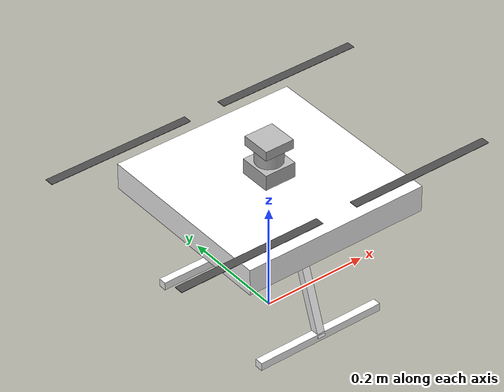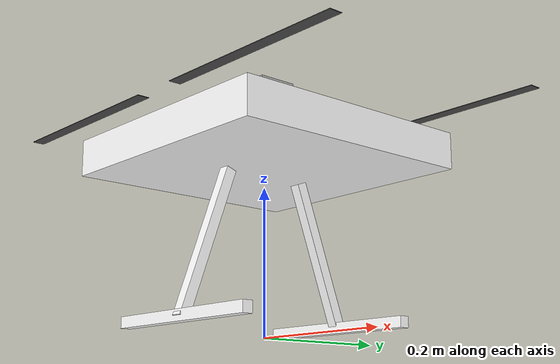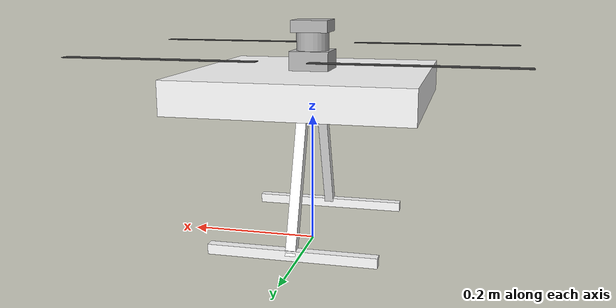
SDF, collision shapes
<?xml version="1.0" encoding="UTF-8"?>
<sdf version='1.9'>
  <model name='x500_lidar_3d'>

    <plugin
      filename="gz-sim-odometry-publisher-system"
      name="gz::sim::systems::OdometryPublisher">
      <dimensions>3</dimensions>
      <odom_covariance_topic>/mavros/local_position/odom</odom_covariance_topic>
      <gaussian_noise>0.01</gaussian_noise>
    </plugin>

    <plugin
      filename="gz-sim-forcetorque-system"
      name="gz::sim::systems::ForceTorque">
    </plugin>

    <include merge='true'>
      <uri>x500</uri>
    </include>
    <include merge='true'>
      <uri>model://lidar_3d</uri>
      <pose>0 0 0.26 0 0 0</pose>
    </include>
    <joint name="LidarJoint" type="fixed">
      <parent>base_link</parent>
      <child>link</child>
      <pose relative_to="base_link">-0 0 0.26 0 0 0</pose>
    </joint>
  </model>
</sdf>

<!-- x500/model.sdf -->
<sdf version='1.9'>
  <model name='x500'>
    <include merge='true'>
      <uri>model://x500_base</uri>
    </include>
    <plugin filename="gz-sim-multicopter-motor-model-system" name="gz::sim::systems::MulticopterMotorModel">
      <jointName>rotor_0_joint</jointName>
      <linkName>rotor_0</linkName>
      <turningDirection>ccw</turningDirection>
      <timeConstantUp>0.0125</timeConstantUp>
      <timeConstantDown>0.025</timeConstantDown>
      <maxRotVelocity>1000.0</maxRotVelocity>
      <motorConstant>8.54858e-06</motorConstant>
      <momentConstant>0.016</momentConstant>
      <commandSubTopic>command/motor_speed</commandSubTopic>
      <motorNumber>0</motorNumber>
      <rotorDragCoefficient>8.06428e-05</rotorDragCoefficient>
      <rollingMomentCoefficient>1e-06</rollingMomentCoefficient>
      <rotorVelocitySlowdownSim>10</rotorVelocitySlowdownSim>
      <motorType>velocity</motorType>
      <motorSpeedPubTopic>out/motor_speed/0</motorSpeedPubTopic>
    </plugin>
    <plugin filename="gz-sim-multicopter-motor-model-system" name="gz::sim::systems::MulticopterMotorModel">
      <jointName>rotor_1_joint</jointName>
      <linkName>rotor_1</linkName>
      <turningDirection>ccw</turningDirection>
      <timeConstantUp>0.0125</timeConstantUp>
      <timeConstantDown>0.025</timeConstantDown>
      <maxRotVelocity>1000.0</maxRotVelocity>
      <motorConstant>8.54858e-06</motorConstant>
      <momentConstant>0.016</momentConstant>
      <commandSubTopic>command/motor_speed</commandSubTopic>
      <motorNumber>1</motorNumber>
      <rotorDragCoefficient>8.06428e-05</rotorDragCoefficient>
      <rollingMomentCoefficient>1e-06</rollingMomentCoefficient>
      <rotorVelocitySlowdownSim>10</rotorVelocitySlowdownSim>
      <motorType>velocity</motorType>
      <motorSpeedPubTopic>out/motor_speed/1</motorSpeedPubTopic>
    </plugin>
    <plugin filename="gz-sim-multicopter-motor-model-system" name="gz::sim::systems::MulticopterMotorModel">
      <jointName>rotor_2_joint</jointName>
      <linkName>rotor_2</linkName>
      <turningDirection>cw</turningDirection>
      <timeConstantUp>0.0125</timeConstantUp>
      <timeConstantDown>0.025</timeConstantDown>
      <maxRotVelocity>1000.0</maxRotVelocity>
      <motorConstant>8.54858e-06</motorConstant>
      <momentConstant>0.016</momentConstant>
      <commandSubTopic>command/motor_speed</commandSubTopic>
      <motorNumber>2</motorNumber>
      <rotorDragCoefficient>8.06428e-05</rotorDragCoefficient>
      <rollingMomentCoefficient>1e-06</rollingMomentCoefficient>
      <rotorVelocitySlowdownSim>10</rotorVelocitySlowdownSim>
      <motorType>velocity</motorType>
      <motorSpeedPubTopic>out/motor_speed/2</motorSpeedPubTopic>
    </plugin>
    <plugin filename="gz-sim-multicopter-motor-model-system" name="gz::sim::systems::MulticopterMotorModel">
      <jointName>rotor_3_joint</jointName>
      <linkName>rotor_3</linkName>
      <turningDirection>cw</turningDirection>
      <timeConstantUp>0.0125</timeConstantUp>
      <timeConstantDown>0.025</timeConstantDown>
      <maxRotVelocity>1000.0</maxRotVelocity>
      <motorConstant>8.54858e-06</motorConstant>
      <momentConstant>0.016</momentConstant>
      <commandSubTopic>command/motor_speed</commandSubTopic>
      <motorNumber>3</motorNumber>
      <rotorDragCoefficient>8.06428e-05</rotorDragCoefficient>
      <rollingMomentCoefficient>1e-06</rollingMomentCoefficient>
      <rotorVelocitySlowdownSim>10</rotorVelocitySlowdownSim>
      <motorType>velocity</motorType>
      <motorSpeedPubTopic>out/motor_speed/3</motorSpeedPubTopic>
    </plugin>
  </model>
</sdf>

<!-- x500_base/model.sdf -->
<sdf version='1.9'>
  <model name='x500_base'>
    <pose>0 0 .24 0 0 0</pose>
    <self_collide>false</self_collide>
    <static>false</static>
    <link name="base_link">
      <inertial>
        <mass>2.0</mass>
        <inertia>
          <ixx>0.02166666666666667</ixx>
          <ixy>0</ixy>
          <ixz>0</ixz>
          <iyy>0.02166666666666667</iyy>
          <iyz>0</iyz>
          <izz>0.04000000000000001</izz>
        </inertia>
      </inertial>
      <gravity>true</gravity>
      <velocity_decay/>
      <visual name="base_link_visual">
        <pose>0 0 .025 0 0 3.141592654</pose>
        <geometry>
          <mesh>
            <scale>1 1 1</scale>
            <uri>model://x500_base/meshes/NXP-HGD-CF.dae</uri>
          </mesh>
        </geometry>
      </visual>
      <visual name="5010_motor_base_0">
        <pose>0.174 0.174 .032 0 0 -.45</pose>
        <geometry>
          <mesh>
            <scale>1 1 1</scale>
            <uri>model://x500_base/meshes/5010Base.dae</uri>
          </mesh>
        </geometry>
      </visual>
      <visual name="5010_motor_base_1">
        <pose>-0.174 0.174 .032 0 0 -.45</pose>
        <geometry>
          <mesh>
            <scale>1 1 1</scale>
            <uri>model://x500_base/meshes/5010Base.dae</uri>
          </mesh>
        </geometry>
      </visual>
      <visual name="5010_motor_base_2">
        <pose>0.174 -0.174 .032 0 0 -.45</pose>
        <geometry>
          <mesh>
            <scale>1 1 1</scale>
            <uri>model://x500_base/meshes/5010Base.dae</uri>
          </mesh>
        </geometry>
      </visual>
      <visual name="5010_motor_base_3">
        <pose>-0.174 -0.174 .032 0 0 -.45</pose>
        <geometry>
          <mesh>
            <scale>1 1 1</scale>
            <uri>model://x500_base/meshes/5010Base.dae</uri>
          </mesh>
        </geometry>
      </visual>
      <visual name="NXP_FMUK66_FRONT">
        <pose>0.047 .001 .043 1 0 1.57</pose>
        <cast_shadows>false</cast_shadows>
        <geometry>
          <plane>
            <normal>0 0 1</normal>
            <size>.013 .007</size>
          </plane>
        </geometry>
        <material>
          <diffuse>1.0 1.0 1.0</diffuse>
          <specular>1.0 1.0 1.0</specular>
          <pbr>
            <metal>
              <albedo_map>model://x500_base/materials/textures/nxp.png</albedo_map>
            </metal>
          </pbr>
        </material>
      </visual>
      <visual name="NXP_FMUK66_TOP">
        <pose>-0.023 0 .0515 0 0 -1.57</pose>
        <cast_shadows>false</cast_shadows>
        <geometry>
          <plane>
            <normal>0 0 1</normal>
            <size>.013 .007</size>
          </plane>
        </geometry>
        <material>
          <diffuse>1.0 1.0 1.0</diffuse>
          <specular>1.0 1.0 1.0</specular>
          <pbr>
            <metal>
              <albedo_map>model://x500_base/materials/textures/nxp.png</albedo_map>
            </metal>
          </pbr>
        </material>
      </visual>
      <visual name="RDDRONE_FMUK66_TOP">
        <pose>-.03 0 .0515 0 0 -1.57</pose>
        <cast_shadows>false</cast_shadows>
        <geometry>
          <plane>
            <normal>0 0 1</normal>
            <size>.032 .0034</size>
          </plane>
        </geometry>
        <material>
          <diffuse>1.0 1.0 1.0</diffuse>
          <specular>1.0 1.0 1.0</specular>
          <pbr>
            <metal>
              <albedo_map>model://x500_base/materials/textures/rd.png</albedo_map>
            </metal>
          </pbr>
        </material>
      </visual>
      <collision name="base_link_collision_0">
        <pose>0 0 .007 0 0 0</pose>
        <geometry>
          <box>
            <size>0.35355339059327373 0.35355339059327373 0.05</size>
          </box>
        </geometry>
        <surface>
          <contact>
            <ode>
              <min_depth>0.001</min_depth>
              <max_vel>0</max_vel>
            </ode>
          </contact>
          <friction>
            <ode/>
          </friction>
        </surface>
      </collision>
      <collision name="base_link_collision_1">
        <pose>0 -0.098 -.123 -0.35 0 0</pose>
        <geometry>
          <box>
            <size>0.015 0.015 0.21</size>
          </box>
        </geometry>
        <surface>
          <contact>
            <ode>
              <min_depth>0.001</min_depth>
              <max_vel>0</max_vel>
            </ode>
          </contact>
          <friction>
            <ode/>
          </friction>
        </surface>
      </collision>
      <collision name="base_link_collision_2">
        <pose>0 0.098 -.123 0.35 0 0</pose>
        <geometry>
          <box>
            <size>0.015 0.015 0.21</size>
          </box>
        </geometry>
        <surface>
          <contact>
            <ode>
              <min_depth>0.001</min_depth>
              <max_vel>0</max_vel>
            </ode>
          </contact>
          <friction>
            <ode/>
          </friction>
        </surface>
      </collision>
      <collision name="base_link_collision_3">
        <pose>0 -0.132 -.2195 0 0 0</pose>
        <geometry>
          <box>
            <size>0.25 0.015 0.015</size>
          </box>
        </geometry>
        <surface>
          <contact>
            <ode>
              <min_depth>0.001</min_depth>
              <max_vel>0</max_vel>
            </ode>
          </contact>
          <friction>
            <ode/>
          </friction>
        </surface>
      </collision>
      <collision name="base_link_collision_4">
        <pose>0 0.132 -.2195 0 0 0</pose>
        <geometry>
          <box>
            <size>0.25 0.015 0.015</size>
          </box>
        </geometry>
        <surface>
          <contact>
            <ode>
              <min_depth>0.001</min_depth>
              <max_vel>0</max_vel>
            </ode>
          </contact>
          <friction>
            <ode/>
          </friction>
        </surface>
      </collision>
      <sensor name="air_pressure_sensor" type="air_pressure">
        <always_on>1</always_on>
        <update_rate>50</update_rate>
        <air_pressure>
          <!-- Noise modeled after BMP390 -->
          <pressure>
            <noise type="gaussian">
              <mean>0</mean>
              <stddev>3</stddev>
            </noise>
          </pressure>
        </air_pressure>
      </sensor>
      <sensor name="magnetometer_sensor" type="magnetometer">
        <always_on>1</always_on>
        <update_rate>100</update_rate>
        <magnetometer>
          <!-- TODO: update to fix units and coordinate system when we move past Harmonic -->
          <!-- See https://github.com/gazebosim/gz-sim/pull/2460 -->
          <!-- 3mgauss RMS: NOTE: noise is in tesla but sensor reports data in gauss -->
          <!-- Noise modeled after IIS2MDC -->
          <x>
            <noise type="gaussian">
              <stddev>0.00001</stddev>
            </noise>
          </x>
          <y>
            <noise type="gaussian">
              <stddev>0.00001</stddev>
            </noise>
          </y>
          <z>
            <noise type="gaussian">
              <stddev>0.00001</stddev>
            </noise>
          </z>
        </magnetometer>
      </sensor>
      <sensor name="imu_sensor" type="imu">
        <always_on>1</always_on>
        <update_rate>250</update_rate>
        <imu>
          <angular_velocity>
            <!-- Noise modeled after IIM42653 -->
            <!-- 0.05 deg/s converted to rad/s -->
            <x>
              <noise type="gaussian">
                <mean>0.0</mean>
                <stddev>0.0002</stddev>
              </noise>
            </x>
            <y>
              <noise type="gaussian">
                <mean>0.0</mean>
                <stddev>0.0002</stddev>
              </noise>
            </y>
            <z>
              <noise type="gaussian">
                <mean>0.0</mean>
                <stddev>0.0002</stddev>
              </noise>
            </z>
          </angular_velocity>
          <linear_acceleration>
            <!-- Noise modeled after IIM42653 -->
            <!-- X & Y axis: 0.65 mg-rms converted to m/ss -->
            <x>
              <noise type="gaussian">
                <mean>0.0</mean>
                <stddev>0.002</stddev>
              </noise>
            </x>
            <y>
              <noise type="gaussian">
                <mean>0.0</mean>
                <stddev>0.002</stddev>
              </noise>
            </y>
            <!-- Z axis: 0.70 mg-rms converted to m/ss-->
            <z>
              <noise type="gaussian">
                <mean>0.0</mean>
                <stddev>0.0025</stddev>
              </noise>
            </z>
          </linear_acceleration>
        </imu>
      </sensor>
      <sensor name="navsat_sensor" type="navsat">
  <always_on>true</always_on>
  <update_rate>10</update_rate>

</sensor>
    </link>
    <link name="rotor_0">
      <gravity>true</gravity>
      <self_collide>false</self_collide>
      <velocity_decay/>
      <pose>0.174 -0.174 0.06 0 0 0</pose>
      <inertial>
          <mass>0.016076923076923075</mass>
          <inertia>
            <ixx>3.8464910483993325e-07</ixx>
            <iyy>2.6115851691700804e-05</iyy>
            <izz>2.649858234714004e-05</izz>
          </inertia>
        </inertial>
      <visual name="rotor_0_visual">
        <pose>-0.022 -0.14638461538461536 -0.016 0 0 0</pose>
        <geometry>
          <mesh>
            <scale>0.8461538461538461 0.8461538461538461 0.8461538461538461</scale>
            <uri>model://x500_base/meshes/1345_prop_ccw.stl</uri>
          </mesh>
        </geometry>
        <material>
          <script>
            <name>Gazebo/DarkGrey</name>
            <uri>file://media/materials/scripts/gazebo.material</uri>
          </script>
        </material>
      </visual>
      <visual name="rotor_0_visual_motor_bell">
        <pose>0 0 -.032 0 0 0</pose>
        <geometry>
          <mesh>
            <scale>1 1 1</scale>
            <uri>model://x500_base/meshes/5010Bell.dae</uri>
          </mesh>
        </geometry>
      </visual>
      <collision name="rotor_0_collision">
        <pose>0 0 0 0 0 0 </pose>
        <geometry>
          <box>
            <size>0.2792307692307692 0.016923076923076923 0.0008461538461538462</size>
          </box>
        </geometry>
        <surface>
          <contact>
            <ode>
              <min_depth>0.001</min_depth>
              <max_vel>0</max_vel>
            </ode>
          </contact>
          <friction>
            <ode/>
          </friction>
        </surface>
      </collision>
    </link>
    <joint name="rotor_0_joint" type="revolute">
      <parent>base_link</parent>
      <child>rotor_0</child>
      <axis>
        <xyz>0 0 1</xyz>
        <limit>
          <lower>-1e+16</lower>
          <upper>1e+16</upper>
        </limit>
        <dynamics>
          <spring_reference>0</spring_reference>
          <spring_stiffness>0</spring_stiffness>
        </dynamics>
      </axis>
      <sensor name="force_torque" type="force_torque">
          <update_rate>400</update_rate>
          <force>
            <x><noise type="gaussian"><mean>0.00</mean><stddev>0.00</stddev></noise></x>
            <y><noise type="gaussian"><mean>0.00</mean><stddev>0.00</stddev></noise></y>
            <z><noise type="gaussian"><mean>0.00</mean><stddev>0.00</stddev></noise></z>
          </force>
          <torque>
            <x><noise type="gaussian"><mean>0.00</mean><stddev>0.00</stddev></noise></x>
            <y><noise type="gaussian"><mean>0.00</mean><stddev>0.00</stddev></noise></y>
            <z><noise type="gaussian"><mean>0.00</mean><stddev>0.00</stddev></noise></z>
          </torque>
      </sensor>
    </joint>
    <link name="rotor_1">
      <gravity>true</gravity>
      <self_collide>false</self_collide>
      <velocity_decay/>
      <pose>-0.174 0.174 0.06 0 0 0</pose>
      <inertial>
          <mass>0.016076923076923075</mass>
          <inertia>
            <ixx>3.8464910483993325e-07</ixx>
            <iyy>2.6115851691700804e-05</iyy>
            <izz>2.649858234714004e-05</izz>
          </inertia>
        </inertial>
      <visual name="rotor_1_visual">
        <pose>-0.022 -0.14638461538461536 -0.016 0 0 0</pose>
        <geometry>
          <mesh>
            <scale>0.8461538461538461 0.8461538461538461 0.8461538461538461</scale>
            <uri>model://x500_base/meshes/1345_prop_ccw.stl</uri>
          </mesh>
        </geometry>
        <material>
          <script>
            <name>Gazebo/DarkGrey</name>
            <uri>file://media/materials/scripts/gazebo.material</uri>
          </script>
        </material>
      </visual>
      <visual name="rotor_1_visual_motor_top">
        <pose>0 0 -.032 0 0 0</pose>
        <geometry>
          <mesh>
            <scale>1 1 1</scale>
            <uri>model://x500_base/meshes/5010Bell.dae</uri>
          </mesh>
        </geometry>
      </visual>
      <collision name="rotor_1_collision">
        <pose>0 0 0 0 0 0 </pose>
        <geometry>
          <box>
            <size>0.2792307692307692 0.016923076923076923 0.0008461538461538462</size>
          </box>
        </geometry>
        <surface>
          <contact>
            <ode>
              <min_depth>0.001</min_depth>
              <max_vel>0</max_vel>
            </ode>
          </contact>
          <friction>
            <ode/>
          </friction>
        </surface>
      </collision>
    </link>
    <joint name="rotor_1_joint" type="revolute">
      <parent>base_link</parent>
      <child>rotor_1</child>
      <axis>
        <xyz>0 0 1</xyz>
        <limit>
          <lower>-1e+16</lower>
          <upper>1e+16</upper>
        </limit>
        <dynamics>
          <spring_reference>0</spring_reference>
          <spring_stiffness>0</spring_stiffness>
        </dynamics>
      </axis>
      <sensor name="force_torque" type="force_torque">
          <update_rate>400</update_rate>
          <force>
            <x><noise type="gaussian"><mean>0.00</mean><stddev>0.00</stddev></noise></x>
            <y><noise type="gaussian"><mean>0.00</mean><stddev>0.00</stddev></noise></y>
            <z><noise type="gaussian"><mean>0.00</mean><stddev>0.00</stddev></noise></z>
          </force>
          <torque>
            <x><noise type="gaussian"><mean>0.00</mean><stddev>0.00</stddev></noise></x>
            <y><noise type="gaussian"><mean>0.00</mean><stddev>0.00</stddev></noise></y>
            <z><noise type="gaussian"><mean>0.00</mean><stddev>0.00</stddev></noise></z>
          </torque>
      </sensor>
    </joint>
    <link name="rotor_2">
      <gravity>true</gravity>
      <self_collide>false</self_collide>
      <velocity_decay/>
      <pose>0.174 0.174 0.06 0 0 0</pose>
      <inertial>
          <mass>0.016076923076923075</mass>
          <inertia>
            <ixx>3.8464910483993325e-07</ixx>
            <iyy>2.6115851691700804e-05</iyy>
            <izz>2.649858234714004e-05</izz>
          </inertia>
        </inertial>
      <visual name="rotor_2_visual">
        <pose>-0.022 -0.14638461538461536 -0.016 0 0 0</pose>
        <geometry>
          <mesh>
            <scale>0.8461538461538461 0.8461538461538461 0.8461538461538461</scale>
            <uri>model://x500_base/meshes/1345_prop_cw.stl</uri>
          </mesh>
        </geometry>
        <material>
          <script>
            <name>Gazebo/DarkGrey</name>
            <uri>file://media/materials/scripts/gazebo.material</uri>
          </script>
        </material>
      </visual>
      <visual name="rotor_2_visual_motor_top">
        <pose>0 0 -.032 0 0 0</pose>
        <geometry>
          <mesh>
            <scale>1 1 1</scale>
            <uri>model://x500_base/meshes/5010Bell.dae</uri>
          </mesh>
        </geometry>
      </visual>
      <collision name="rotor_2_collision">
        <pose>0 0 0 0 0 0 </pose>
        <geometry>
          <box>
            <size>0.2792307692307692 0.016923076923076923 0.0008461538461538462</size>
          </box>
        </geometry>
        <surface>
          <contact>
            <ode>
              <min_depth>0.001</min_depth>
              <max_vel>0</max_vel>
            </ode>
          </contact>
          <friction>
            <ode/>
          </friction>
        </surface>
      </collision>
    </link>
    <joint name="rotor_2_joint" type="revolute">
      <parent>base_link</parent>
      <child>rotor_2</child>
      <axis>
        <xyz>0 0 1</xyz>
        <limit>
          <lower>-1e+16</lower>
          <upper>1e+16</upper>
        </limit>
        <dynamics>
          <spring_reference>0</spring_reference>
          <spring_stiffness>0</spring_stiffness>
        </dynamics>
      </axis>
      <sensor name="force_torque" type="force_torque">
          <update_rate>400</update_rate>
          <force>
            <x><noise type="gaussian"><mean>0.00</mean><stddev>0.00</stddev></noise></x>
            <y><noise type="gaussian"><mean>0.00</mean><stddev>0.00</stddev></noise></y>
            <z><noise type="gaussian"><mean>0.00</mean><stddev>0.00</stddev></noise></z>
          </force>
          <torque>
            <x><noise type="gaussian"><mean>0.00</mean><stddev>0.00</stddev></noise></x>
            <y><noise type="gaussian"><mean>0.00</mean><stddev>0.00</stddev></noise></y>
            <z><noise type="gaussian"><mean>0.00</mean><stddev>0.00</stddev></noise></z>
          </torque>
      </sensor>
    </joint>
    <link name="rotor_3">
      <gravity>true</gravity>
      <self_collide>false</self_collide>
      <velocity_decay/>
      <pose>-0.174 -0.174 0.06 0 0 0</pose>
      <inertial>
          <mass>0.016076923076923075</mass>
          <inertia>
            <ixx>3.8464910483993325e-07</ixx>
            <iyy>2.6115851691700804e-05</iyy>
            <izz>2.649858234714004e-05</izz>
          </inertia>
        </inertial>
      <visual name="rotor_3_visual">
        <pose>-0.022 -0.14638461538461536 -0.016 0 0 0</pose>
        <geometry>
          <mesh>
            <scale>0.8461538461538461 0.8461538461538461 0.8461538461538461</scale>
            <uri>model://x500_base/meshes/1345_prop_cw.stl</uri>
          </mesh>
        </geometry>
        <material>
          <script>
            <name>Gazebo/DarkGrey</name>
            <uri>file://media/materials/scripts/gazebo.material</uri>
          </script>
        </material>
      </visual>
      <visual name="rotor_3_visual_motor_top">
        <pose>0 0 -.032 0 0 0</pose>
        <geometry>
          <mesh>
            <scale>1 1 1</scale>
            <uri>model://x500_base/meshes/5010Bell.dae</uri>
          </mesh>
        </geometry>
      </visual>
      <collision name="rotor_3_collision">
        <pose>0 0 0 0 0 0 </pose>
        <geometry>
          <box>
            <size>0.2792307692307692 0.016923076923076923 0.0008461538461538462</size>
          </box>
        </geometry>
        <surface>
          <contact>
            <ode>
              <min_depth>0.001</min_depth>
              <max_vel>0</max_vel>
            </ode>
          </contact>
          <friction>
            <ode/>
          </friction>
        </surface>
      </collision>
    </link>
    <joint name="rotor_3_joint" type="revolute">
      <parent>base_link</parent>
      <child>rotor_3</child>
      <axis>
        <xyz>0 0 1</xyz>
        <limit>
          <lower>-1e+16</lower>
          <upper>1e+16</upper>
        </limit>
        <dynamics>
          <spring_reference>0</spring_reference>
          <spring_stiffness>0</spring_stiffness>
        </dynamics>
      </axis>
      <sensor name="force_torque" type="force_torque">
          <update_rate>400</update_rate>
          <force>
            <x><noise type="gaussian"><mean>0.00</mean><stddev>0.00</stddev></noise></x>
            <y><noise type="gaussian"><mean>0.00</mean><stddev>0.00</stddev></noise></y>
            <z><noise type="gaussian"><mean>0.00</mean><stddev>0.00</stddev></noise></z>
          </force>
          <torque>
            <x><noise type="gaussian"><mean>0.00</mean><stddev>0.00</stddev></noise></x>
            <y><noise type="gaussian"><mean>0.00</mean><stddev>0.00</stddev></noise></y>
            <z><noise type="gaussian"><mean>0.00</mean><stddev>0.00</stddev></noise></z>
          </torque>
      </sensor>
    </joint>
  </model>
</sdf>

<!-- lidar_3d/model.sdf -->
<sdf version="1.6">
  <model name="lidar_avia">
    <link name="link">
      <pose>0 0 0 0 0 0</pose>
      <inertial>
        <pose>0 0 0.0435 0 0 0</pose>
        <mass>0.37</mass>
        <inertia>
          <ixx>0.00034437749999999994</ixx>
          <ixy>0</ixy>
          <ixz>0</ixz>
          <iyy>0.00034437749999999994</iyy>
          <iyz>0</iyz>
          <izz>0.00022199999999999998</izz>
        </inertia>
      </inertial>
      <collision name="collision_base">
        <pose>0 0 0.0205 0 0 0</pose>
        <geometry>
          <box>
            <size>0.06 0.06 0.041</size>
          </box>
        </geometry>
      </collision>
      <collision name="collision_mid">
        <pose>0 0 0.055 0 0 0</pose>
        <geometry>
          <cylinder>
            <radius>0.025</radius>
            <length>0.028</length>
          </cylinder>
        </geometry>
      </collision>
      <collision name="collision_top">
        <pose>0 0 0.078 0 0 0</pose>
        <geometry>
          <box>
            <size>0.056 0.056 0.018</size>
          </box>
        </geometry>
      </collision>
      <visual name="visual">
        <geometry>
          <mesh>
            <uri>model://lidar_2d_v2/meshes/lidar_2d_v2.dae</uri>
          </mesh>
        </geometry>
      </visual>
  <sensor name="lidar_avia" type="gpu_lidar">
	  <pose>0 0 0.055 0 0 0</pose>
	  <ray>
	    <scan>
	      <horizontal>
          <samples>400</samples>
          <resolution>1</resolution>
          <min_angle>-0.614355</min_angle>
          <max_angle>0.614355</max_angle>
	      </horizontal>
	      <vertical>
          <samples>200</samples>
          <resolution>1</resolution>
          <min_angle>-0.674743</min_angle>
          <max_angle>0.674743</max_angle>
	      </vertical>
	    </scan>
	    <range>
	      <min>0.5</min>
	      <max>200.0</max>
        <resolution>0.002</resolution>
	    </range>
	    <noise>
	      <type>gaussian</type>
	      <mean>0.0</mean>
	      <stddev>0.01</stddev>
	    </noise>
	  </ray>
	  <always_on>1</always_on>
	  <update_rate>10</update_rate>
	  <visualize>true</visualize>
	  <topic>livox/lidar</topic>
	</sensor>

	<sensor name="imu_sensor" type="imu">
        <pose>0.04165 0.02326 0.0266 0 0 0</pose>
        <always_on>true</always_on>
        <update_rate>250</update_rate>
        <topic>livox/lidar/imu</topic>
        <imu>
          <angular_velocity>
            <x><noise type="gaussian"><mean>0.00</mean><stddev>0.0032</stddev></noise></x>
            <y><noise type="gaussian"><mean>0.00</mean><stddev>0.0032</stddev></noise></y>
            <z><noise type="gaussian"><mean>0.00</mean><stddev>0.0032</stddev></noise></z>
          </angular_velocity>
          <linear_acceleration>
            <x><noise type="gaussian"><mean>-0.00</mean><stddev>0.032</stddev></noise></x>
            <y><noise type="gaussian"><mean>-0.00</mean><stddev>0.032</stddev></noise></y>
            <z><noise type="gaussian"><mean>-0.00</mean><stddev>0.032</stddev></noise></z>
          </linear_acceleration>
        </imu>
      </sensor>

    </link>
  </model>
</sdf>
